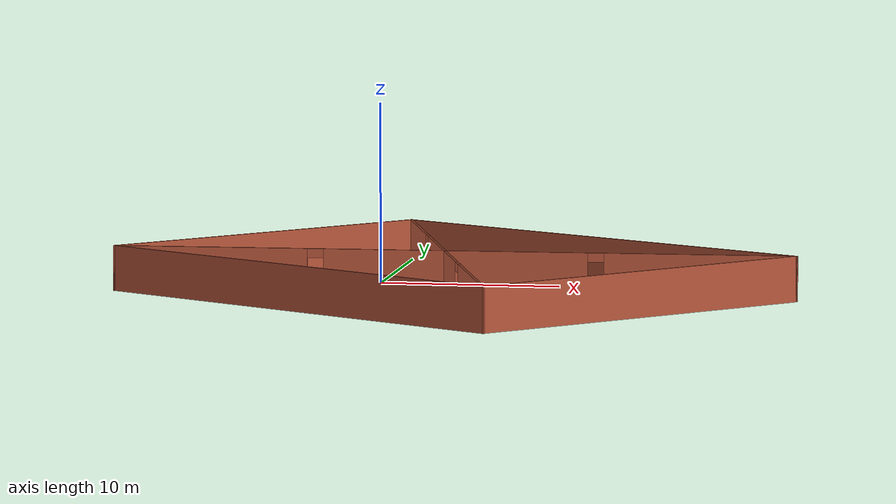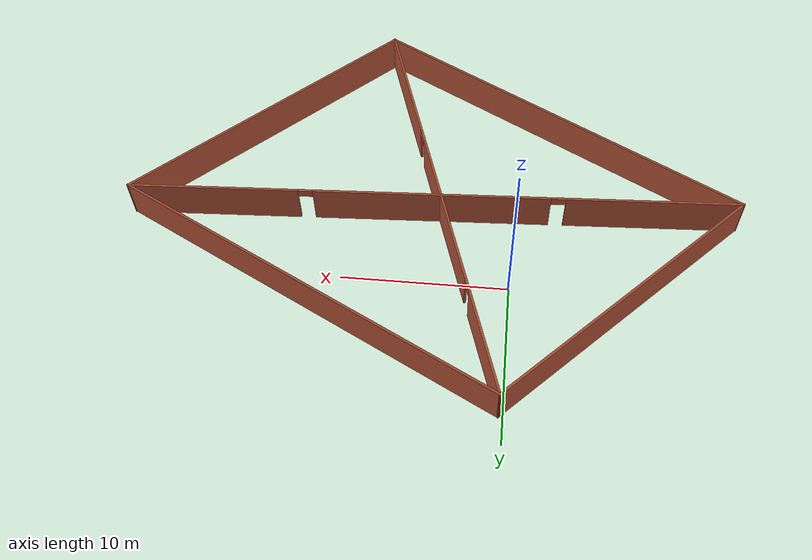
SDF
<?xml version='1.0'?>
<sdf version='1.6'>
  <model name='building'>
    <pose frame=''>4.87616 -5.23092 0 0 -0 0</pose>
    <link name='Wall_1'>
      <collision name='Wall_1_Collision'>
        <geometry>
          <box>
            <size>20 0.15 2.5</size>
          </box>
        </geometry>
        <pose frame=''>0 0 1.25 0 -0 0</pose>
      </collision>
      <visual name='Wall_1_Visual'>
        <pose frame=''>0 0 1.25 0 -0 0</pose>
        <geometry>
          <box>
            <size>20 0.15 2.5</size>
          </box>
        </geometry>
        <material>
          <script>
            <uri>file://media/materials/scripts/gazebo.material</uri>
            <name>Gazebo/Bricks</name>
          </script>
          <ambient>1 1 1 1</ambient>
        </material>
        <meta>
          <layer>0</layer>
        </meta>
      </visual>
      <pose frame=''>-11.6552 6.525 0 0 0 -2.35619</pose>
    </link>
    <link name='Wall_2'>
      <collision name='Wall_2_Collision'>
        <geometry>
          <box>
            <size>26.25 0.15 2.5</size>
          </box>
        </geometry>
        <pose frame=''>0 0 1.25 0 -0 0</pose>
      </collision>
      <visual name='Wall_2_Visual'>
        <pose frame=''>0 0 1.25 0 -0 0</pose>
        <geometry>
          <box>
            <size>26.25 0.15 2.5</size>
          </box>
        </geometry>
        <material>
          <script>
            <uri>file://media/materials/scripts/gazebo.material</uri>
            <name>Gazebo/Bricks</name>
          </script>
          <ambient>1 1 1 1</ambient>
        </material>
        <meta>
          <layer>0</layer>
        </meta>
      </visual>
      <pose frame=''>-7.37159 -7.01803 0 0 0 -0.523599</pose>
    </link>
    <link name='Wall_3'>
      <collision name='Wall_3_Collision'>
        <geometry>
          <box>
            <size>21 0.15 2.5</size>
          </box>
        </geometry>
        <pose frame=''>0 0 1.25 0 -0 0</pose>
      </collision>
      <visual name='Wall_3_Visual'>
        <pose frame=''>0 0 1.25 0 -0 0</pose>
        <geometry>
          <box>
            <size>21 0.15 2.5</size>
          </box>
        </geometry>
        <material>
          <script>
            <uri>file://media/materials/scripts/gazebo.material</uri>
            <name>Gazebo/Bricks</name>
          </script>
          <ambient>1 1 1 1</ambient>
        </material>
        <meta>
          <layer>0</layer>
        </meta>
      </visual>
      <pose frame=''>11.3016 -6.17145 0 0 -0 0.785398</pose>
    </link>
    <link name='Wall_4'>
      <collision name='Wall_4_Collision'>
        <geometry>
          <box>
            <size>26.5265 0.15 2.5</size>
          </box>
        </geometry>
        <pose frame=''>0 0 1.25 0 -0 0</pose>
      </collision>
      <visual name='Wall_4_Visual'>
        <pose frame=''>0 0 1.25 0 -0 0</pose>
        <geometry>
          <box>
            <size>26.5265 0.15 2.5</size>
          </box>
        </geometry>
        <material>
          <script>
            <uri>file://media/materials/scripts/gazebo.material</uri>
            <name>Gazebo/Bricks</name>
          </script>
          <ambient>1 1 1 1</ambient>
        </material>
        <meta>
          <layer>0</layer>
        </meta>
      </visual>
      <pose frame=''>7.01804 7.37159 0 0 -0 2.65462</pose>
    </link>
    <link name='Wall_5'>
      <pose frame=''>-0.353551 0 0 0 0 -1.26446</pose>
      <visual name='Wall_5_Visual_0'>
        <pose frame=''>-10.9376 0 1.25 0 -0 0</pose>
        <geometry>
          <box>
            <size>6.68336 0.15 2.5</size>
          </box>
        </geometry>
        <material>
          <script>
            <uri>file://media/materials/scripts/gazebo.material</uri>
            <name>Gazebo/Bricks</name>
          </script>
          <ambient>1 1 1 1</ambient>
        </material>
        <meta>
          <layer>0</layer>
        </meta>
      </visual>
      <collision name='Wall_5_Collision_0'>
        <geometry>
          <box>
            <size>6.68336 0.15 2.5</size>
          </box>
        </geometry>
        <pose frame=''>-10.9376 0 1.25 0 -0 0</pose>
      </collision>
      <visual name='Wall_5_Visual_1'>
        <pose frame=''>-1.21727 0 1.25 0 -0 0</pose>
        <geometry>
          <box>
            <size>10.9574 0.15 2.5</size>
          </box>
        </geometry>
        <material>
          <script>
            <uri>file://media/materials/scripts/gazebo.material</uri>
            <name>Gazebo/Bricks</name>
          </script>
          <ambient>1 1 1 1</ambient>
        </material>
        <meta>
          <layer>0</layer>
        </meta>
      </visual>
      <collision name='Wall_5_Collision_1'>
        <geometry>
          <box>
            <size>10.9574 0.15 2.5</size>
          </box>
        </geometry>
        <pose frame=''>-1.21727 0 1.25 0 -0 0</pose>
      </collision>
      <visual name='Wall_5_Visual_2'>
        <pose frame=''>9.72038 0 1.25 0 -0 0</pose>
        <geometry>
          <box>
            <size>9.11789 0.15 2.5</size>
          </box>
        </geometry>
        <material>
          <script>
            <uri>file://media/materials/scripts/gazebo.material</uri>
            <name>Gazebo/Bricks</name>
          </script>
          <ambient>1 1 1 1</ambient>
        </material>
        <meta>
          <layer>0</layer>
        </meta>
      </visual>
      <collision name='Wall_5_Collision_2'>
        <geometry>
          <box>
            <size>9.11789 0.15 2.5</size>
          </box>
        </geometry>
        <pose frame=''>9.72038 0 1.25 0 -0 0</pose>
      </collision>
      <visual name='Wall_5_Visual_3'>
        <pose frame=''>-7.14597 0 2.25 0 -0 0</pose>
        <geometry>
          <box>
            <size>0.9 0.15 0.5</size>
          </box>
        </geometry>
        <material>
          <script>
            <uri>file://media/materials/scripts/gazebo.material</uri>
            <name>Gazebo/Bricks</name>
          </script>
          <ambient>1 1 1 1</ambient>
        </material>
        <meta>
          <layer>0</layer>
        </meta>
      </visual>
      <collision name='Wall_5_Collision_3'>
        <geometry>
          <box>
            <size>0.9 0.15 0.5</size>
          </box>
        </geometry>
        <pose frame=''>-7.14597 0 2.25 0 -0 0</pose>
      </collision>
      <visual name='Wall_5_Visual_4'>
        <pose frame=''>4.71144 0 2.25 0 -0 0</pose>
        <geometry>
          <box>
            <size>0.9 0.15 0.5</size>
          </box>
        </geometry>
        <material>
          <script>
            <uri>file://media/materials/scripts/gazebo.material</uri>
            <name>Gazebo/Bricks</name>
          </script>
          <ambient>1 1 1 1</ambient>
        </material>
        <meta>
          <layer>0</layer>
        </meta>
      </visual>
      <collision name='Wall_5_Collision_4'>
        <geometry>
          <box>
            <size>0.9 0.15 0.5</size>
          </box>
        </geometry>
        <pose frame=''>4.71144 0 2.25 0 -0 0</pose>
      </collision>
    </link>
    <link name='Wall_7'>
      <pose frame=''>2e-06 0.353553 0 0 -0 0.045306</pose>
      <visual name='Wall_7_Visual_0'>
        <pose frame=''>-13.4025 0 1.25 0 -0 0</pose>
        <geometry>
          <box>
            <size>10.7298 0.15 2.5</size>
          </box>
        </geometry>
        <material>
          <script>
            <uri>file://media/materials/scripts/gazebo.material</uri>
            <name>Gazebo/Bricks</name>
          </script>
          <ambient>1 1 1 1</ambient>
        </material>
        <meta>
          <layer>0</layer>
        </meta>
      </visual>
      <collision name='Wall_7_Collision_0'>
        <geometry>
          <box>
            <size>10.7298 0.15 2.5</size>
          </box>
        </geometry>
        <pose frame=''>-13.4025 0 1.25 0 -0 0</pose>
      </collision>
      <visual name='Wall_7_Visual_1'>
        <pose frame=''>0.114379 0 1.25 0 -0 0</pose>
        <geometry>
          <box>
            <size>14.504 0.15 2.5</size>
          </box>
        </geometry>
        <material>
          <script>
            <uri>file://media/materials/scripts/gazebo.material</uri>
            <name>Gazebo/Bricks</name>
          </script>
          <ambient>1 1 1 1</ambient>
        </material>
        <meta>
          <layer>0</layer>
        </meta>
      </visual>
      <collision name='Wall_7_Collision_1'>
        <geometry>
          <box>
            <size>14.504 0.15 2.5</size>
          </box>
        </geometry>
        <pose frame=''>0.114379 0 1.25 0 -0 0</pose>
      </collision>
      <visual name='Wall_7_Visual_2'>
        <pose frame=''>13.5169 0 1.25 0 -0 0</pose>
        <geometry>
          <box>
            <size>10.501 0.15 2.5</size>
          </box>
        </geometry>
        <material>
          <script>
            <uri>file://media/materials/scripts/gazebo.material</uri>
            <name>Gazebo/Bricks</name>
          </script>
          <ambient>1 1 1 1</ambient>
        </material>
        <meta>
          <layer>0</layer>
        </meta>
      </visual>
      <collision name='Wall_7_Collision_2'>
        <geometry>
          <box>
            <size>10.501 0.15 2.5</size>
          </box>
        </geometry>
        <pose frame=''>13.5169 0 1.25 0 -0 0</pose>
      </collision>
      <visual name='Wall_7_Visual_3'>
        <pose frame=''>-7.58761 0 2.25 0 -0 0</pose>
        <geometry>
          <box>
            <size>0.9 0.15 0.5</size>
          </box>
        </geometry>
        <material>
          <script>
            <uri>file://media/materials/scripts/gazebo.material</uri>
            <name>Gazebo/Bricks</name>
          </script>
          <ambient>1 1 1 1</ambient>
        </material>
        <meta>
          <layer>0</layer>
        </meta>
      </visual>
      <collision name='Wall_7_Collision_3'>
        <geometry>
          <box>
            <size>0.9 0.15 0.5</size>
          </box>
        </geometry>
        <pose frame=''>-7.58761 0 2.25 0 -0 0</pose>
      </collision>
      <visual name='Wall_7_Visual_4'>
        <pose frame=''>7.81637 0 2.25 0 -0 0</pose>
        <geometry>
          <box>
            <size>0.9 0.15 0.5</size>
          </box>
        </geometry>
        <material>
          <script>
            <uri>file://media/materials/scripts/gazebo.material</uri>
            <name>Gazebo/Bricks</name>
          </script>
          <ambient>1 1 1 1</ambient>
        </material>
        <meta>
          <layer>0</layer>
        </meta>
      </visual>
      <collision name='Wall_7_Collision_4'>
        <geometry>
          <box>
            <size>0.9 0.15 0.5</size>
          </box>
        </geometry>
        <pose frame=''>7.81637 0 2.25 0 -0 0</pose>
      </collision>
    </link>
    <static>1</static>
  </model>
</sdf>
